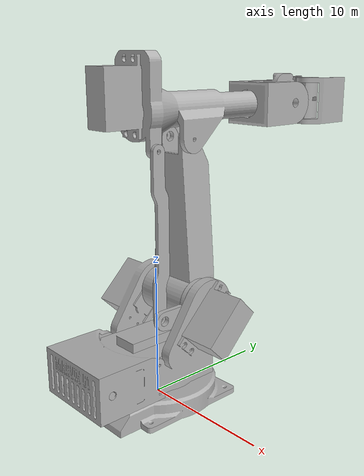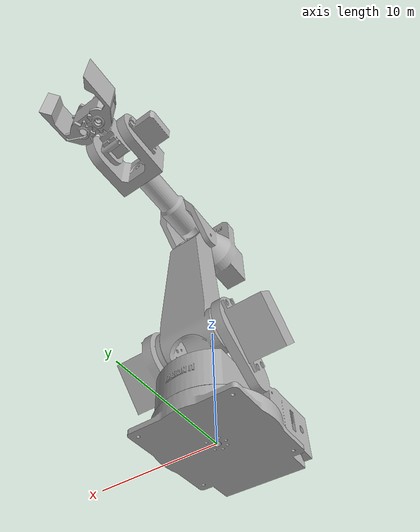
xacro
<?xml version="1.0" ?>
<robot name="Marvin01Scale" xmlns:xacro="http://www.ros.org/wiki/xacro">

<xacro:include filename="$(find Marvin01Scale_description)/urdf/materials.xacro" />
<xacro:include filename="$(find Marvin01Scale_description)/urdf/Marvin01Scale.trans" />
<xacro:include filename="$(find Marvin01Scale_description)/urdf/Marvin01Scale.gazebo" />
<link name="base_link">
  <inertial>
    <origin rpy="0 0 0" xyz="6.830711472621104e-12 -0.830253908134836 0.6566457993430691"/>
    <mass value="707741.9567336167"/>
    <inertia ixx="6120991.002864" ixy="-4e-06" ixz="-3e-06" iyy="4204055.115193" iyz="9528.53418" izz="10062871.213081"/>
  </inertial>
  <visual>
    <origin rpy="0 0 0" xyz="0 0 0"/>
    <geometry>
      <mesh filename="package://Marvin01Scale_description/meshes/base_link.stl" scale="0.001 0.001 0.001"/>
    </geometry>
    <material name="silver"/>
  </visual>
  <collision>
    <origin rpy="0 0 0" xyz="0 0 0"/>
    <geometry>
      <mesh filename="package://Marvin01Scale_description/meshes/base_link.stl" scale="0.001 0.001 0.001"/>
    </geometry>
  </collision>
</link>

<link name="joint1_1">
  <inertial>
    <origin rpy="0 0 0" xyz="0.0012779639306998826 0.14293309351939398 2.806210954915956"/>
    <mass value="1808337.358215421"/>
    <inertia ixx="18328326.445389" ixy="12566.831744" ixz="1948.014242" iyy="22523607.035097" iyz="-3140204.661801" izz="26223887.018984"/>
  </inertial>
  <visual>
    <origin rpy="0 0 0" xyz="-0.0 0.0 -1.5"/>
    <geometry>
      <mesh filename="package://Marvin01Scale_description/meshes/joint1_1.stl" scale="0.001 0.001 0.001"/>
    </geometry>
    <material name="silver"/>
  </visual>
  <collision>
    <origin rpy="0 0 0" xyz="-0.0 0.0 -1.5"/>
    <geometry>
      <mesh filename="package://Marvin01Scale_description/meshes/joint1_1.stl" scale="0.001 0.001 0.001"/>
    </geometry>
  </collision>
</link>

<link name="joint2_1">
  <inertial>
    <origin rpy="0 0 0" xyz="-0.14307960365103697 0.32803297031249423 4.394289977517414"/>
    <mass value="358523.4926737707"/>
    <inertia ixx="5635540.111641" ixy="-16827.241166" ixz="-225415.673882" iyy="5917446.750616" iyz="-178229.631481" izz="1031879.692544"/>
  </inertial>
  <visual>
    <origin rpy="0 0 0" xyz="-0.0 -2.269074 -7.403218"/>
    <geometry>
      <mesh filename="package://Marvin01Scale_description/meshes/joint2_1.stl" scale="0.001 0.001 0.001"/>
    </geometry>
    <material name="silver"/>
  </visual>
  <collision>
    <origin rpy="0 0 0" xyz="-0.0 -2.269074 -7.403218"/>
    <geometry>
      <mesh filename="package://Marvin01Scale_description/meshes/joint2_1.stl" scale="0.001 0.001 0.001"/>
    </geometry>
  </collision>
</link>

<link name="joint31_1">
  <inertial>
    <origin rpy="0 0 0" xyz="-0.41067949885467847 -0.8437545053724238 -0.020476563462739072"/>
    <mass value="34192.64476921537"/>
    <inertia ixx="106084.562025" ixy="-352.01572" ixz="-87.811" iyy="27626.852229" iyz="-11245.150467" izz="79370.458061"/>
  </inertial>
  <visual>
    <origin rpy="0 0 0" xyz="-2.65 -2.269074 -7.213218"/>
    <geometry>
      <mesh filename="package://Marvin01Scale_description/meshes/joint31_1.stl" scale="0.001 0.001 0.001"/>
    </geometry>
    <material name="silver"/>
  </visual>
  <collision>
    <origin rpy="0 0 0" xyz="-2.65 -2.269074 -7.213218"/>
    <geometry>
      <mesh filename="package://Marvin01Scale_description/meshes/joint31_1.stl" scale="0.001 0.001 0.001"/>
    </geometry>
  </collision>
</link>

<link name="joint3_1">
  <inertial>
    <origin rpy="0 0 0" xyz="0.010640147045936734 -1.9896429693934157 2.43711925519521"/>
    <mass value="625995.4881109771"/>
    <inertia ixx="9264358.723144" ixy="10047.920478" ixz="15711.547766" iyy="1767061.95412" iyz="1210418.844373" izz="8526826.756427"/>
  </inertial>
  <visual>
    <origin rpy="0 0 0" xyz="-0.0 -2.256734 -19.403211"/>
    <geometry>
      <mesh filename="package://Marvin01Scale_description/meshes/joint3_1.stl" scale="0.001 0.001 0.001"/>
    </geometry>
    <material name="silver"/>
  </visual>
  <collision>
    <origin rpy="0 0 0" xyz="-0.0 -2.256734 -19.403211"/>
    <geometry>
      <mesh filename="package://Marvin01Scale_description/meshes/joint3_1.stl" scale="0.001 0.001 0.001"/>
    </geometry>
  </collision>
</link>

<link name="joint4_1">
  <inertial>
    <origin rpy="0 0 0" xyz="-0.4612576627328692 2.1808693046909653 -0.006067561583183334"/>
    <mass value="285362.38048337575"/>
    <inertia ixx="797483.206219" ixy="105730.628594" ixz="372.823797" iyy="1147591.590044" iyz="-2149.830897" izz="1488857.60676"/>
  </inertial>
  <visual>
    <origin rpy="0 0 0" xyz="-0.0 -9.491734 -21.403211"/>
    <geometry>
      <mesh filename="package://Marvin01Scale_description/meshes/joint4_1.stl" scale="0.001 0.001 0.001"/>
    </geometry>
    <material name="silver"/>
  </visual>
  <collision>
    <origin rpy="0 0 0" xyz="-0.0 -9.491734 -21.403211"/>
    <geometry>
      <mesh filename="package://Marvin01Scale_description/meshes/joint4_1.stl" scale="0.001 0.001 0.001"/>
    </geometry>
  </collision>
</link>

<link name="joint5_1">
  <inertial>
    <origin rpy="0 0 0" xyz="0.19717016145279231 0.3114593208162084 0.5374753069182461"/>
    <mass value="83980.78687410816"/>
    <inertia ixx="103420.741685" ixy="8001.776367" ixz="39.107323" iyy="73930.127195" iyz="3244.056942" izz="65516.187376"/>
  </inertial>
  <visual>
    <origin rpy="0 0 0" xyz="-0.0 -12.991734 -21.403211"/>
    <geometry>
      <mesh filename="package://Marvin01Scale_description/meshes/joint5_1.stl" scale="0.001 0.001 0.001"/>
    </geometry>
    <material name="silver"/>
  </visual>
  <collision>
    <origin rpy="0 0 0" xyz="-0.0 -12.991734 -21.403211"/>
    <geometry>
      <mesh filename="package://Marvin01Scale_description/meshes/joint5_1.stl" scale="0.001 0.001 0.001"/>
    </geometry>
  </collision>
</link>

<link name="gripper1_1">
  <inertial>
    <origin rpy="0 0 0" xyz="-0.12012278961198618 0.8537598788093987 0.014435449695572089"/>
    <mass value="7014.261450939257"/>
    <inertia ixx="9123.093731" ixy="-11.59407" ixz="-445.328279" iyy="14425.460738" iyz="1.393261" izz="9895.246319"/>
  </inertial>
  <visual>
    <origin rpy="0 0 0" xyz="-0.0 -15.120067 -21.428211"/>
    <geometry>
      <mesh filename="package://Marvin01Scale_description/meshes/gripper1_1.stl" scale="0.001 0.001 0.001"/>
    </geometry>
    <material name="silver"/>
  </visual>
  <collision>
    <origin rpy="0 0 0" xyz="-0.0 -15.120067 -21.428211"/>
    <geometry>
      <mesh filename="package://Marvin01Scale_description/meshes/gripper1_1.stl" scale="0.001 0.001 0.001"/>
    </geometry>
  </collision>
</link>

<link name="gripper2_1">
  <inertial>
    <origin rpy="0 0 0" xyz="0.04851034720493841 1.533344165077482 -1.806704686285645"/>
    <mass value="5177.751815175873"/>
    <inertia ixx="16044.346934" ixy="1567.118959" ixz="-118.692095" iyy="10383.565059" iyz="359.149885" izz="8528.581734"/>
  </inertial>
  <visual>
    <origin rpy="0 0 0" xyz="-0.77 -15.960067 -23.278211"/>
    <geometry>
      <mesh filename="package://Marvin01Scale_description/meshes/gripper2_1.stl" scale="0.001 0.001 0.001"/>
    </geometry>
    <material name="silver"/>
  </visual>
  <collision>
    <origin rpy="0 0 0" xyz="-0.77 -15.960067 -23.278211"/>
    <geometry>
      <mesh filename="package://Marvin01Scale_description/meshes/gripper2_1.stl" scale="0.001 0.001 0.001"/>
    </geometry>
  </collision>
</link>

<link name="gripper3_1">
  <inertial>
    <origin rpy="0 0 0" xyz="-0.06595559703236398 1.4942544998994247 -1.4749997228921785"/>
    <mass value="5440.908080297406"/>
    <inertia ixx="16934.177187" ixy="-1600.874278" ixz="0.0" iyy="11112.355158" iyz="-0.0" izz="8778.854045"/>
  </inertial>
  <visual>
    <origin rpy="0 0 0" xyz="0.77 -15.960067 -22.878211"/>
    <geometry>
      <mesh filename="package://Marvin01Scale_description/meshes/gripper3_1.stl" scale="0.001 0.001 0.001"/>
    </geometry>
    <material name="silver"/>
  </visual>
  <collision>
    <origin rpy="0 0 0" xyz="0.77 -15.960067 -22.878211"/>
    <geometry>
      <mesh filename="package://Marvin01Scale_description/meshes/gripper3_1.stl" scale="0.001 0.001 0.001"/>
    </geometry>
  </collision>
</link>

<link name="joint32_1">
  <inertial>
    <origin rpy="0 0 0" xyz="-0.14999999999986113 0.15322143132440025 5.999999622050031"/>
    <mass value="30310.111546442153"/>
    <inertia ixx="405467.148004" ixy="-0.0" ixz="0.0" iyy="402367.608982" iyz="0.0" izz="3554.190695"/>
  </inertial>
  <visual>
    <origin rpy="0 0 0" xyz="-2.027119 1.230926 -6.903218"/>
    <geometry>
      <mesh filename="package://Marvin01Scale_description/meshes/joint32_1.stl" scale="0.001 0.001 0.001"/>
    </geometry>
    <material name="silver"/>
  </visual>
  <collision>
    <origin rpy="0 0 0" xyz="-2.027119 1.230926 -6.903218"/>
    <geometry>
      <mesh filename="package://Marvin01Scale_description/meshes/joint32_1.stl" scale="0.001 0.001 0.001"/>
    </geometry>
  </collision>
</link>

<joint name="Rev64" type="continuous">
  <origin rpy="0 0 0" xyz="0.0 0.0 1.5"/>
  <parent link="base_link"/>
  <child link="joint1_1"/>
  <axis xyz="-0.0 0.0 -1.0"/>
</joint>

<joint name="Rev65" type="continuous">
  <origin rpy="0 0 0" xyz="0.0 2.269074 5.903218"/>
  <parent link="joint1_1"/>
  <child link="joint2_1"/>
  <axis xyz="-1.0 -0.0 0.0"/>
</joint>

<joint name="Rev66" type="continuous">
  <origin rpy="0 0 0" xyz="2.65 2.269074 5.713218"/>
  <parent link="joint1_1"/>
  <child link="joint31_1"/>
  <axis xyz="-1.0 0.0 -0.0"/>
</joint>

<joint name="Rev67" type="continuous">
  <origin rpy="0 0 0" xyz="0.0 -0.01234 11.999993"/>
  <parent link="joint2_1"/>
  <child link="joint3_1"/>
  <axis xyz="-1.0 0.0 0.0"/>
</joint>

<joint name="Rev68" type="continuous">
  <origin rpy="0 0 0" xyz="0.0 7.235 2.0"/>
  <parent link="joint3_1"/>
  <child link="joint4_1"/>
  <axis xyz="0.0 1.0 0.0"/>
</joint>

<joint name="Rev69" type="continuous">
  <origin rpy="0 0 0" xyz="0.0 3.5 0.0"/>
  <parent link="joint4_1"/>
  <child link="joint5_1"/>
  <axis xyz="1.0 0.0 -0.0"/>
</joint>

<joint name="Rev70" type="continuous">
  <origin rpy="0 0 0" xyz="0.0 2.128333 0.025"/>
  <parent link="joint5_1"/>
  <child link="gripper1_1"/>
  <axis xyz="-0.0 1.0 0.0"/>
</joint>

<joint name="Rev72" type="continuous">
  <origin rpy="0 0 0" xyz="0.77 0.84 1.85"/>
  <parent link="gripper1_1"/>
  <child link="gripper2_1"/>
  <axis xyz="-0.0 0.0 1.0"/>
</joint>

<joint name="Rev73" type="continuous">
  <origin rpy="0 0 0" xyz="-0.77 0.84 1.45"/>
  <parent link="gripper1_1"/>
  <child link="gripper3_1"/>
  <axis xyz="0.0 0.0 -1.0"/>
</joint>

<joint name="Rev76" type="continuous">
  <origin rpy="0 0 0" xyz="-0.622881 -3.5 -0.31"/>
  <parent link="joint31_1"/>
  <child link="joint32_1"/>
  <axis xyz="-1.0 0.0 -0.0"/>
</joint>

</robot>

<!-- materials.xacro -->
<robot name="Marvin01Scale" xmlns:xacro="http://www.ros.org/wiki/xacro" >

<material name="silver">
  <color rgba="0.700 0.700 0.700 1.000"/>
</material>

</robot>

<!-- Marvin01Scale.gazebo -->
<robot name="Marvin01Scale" xmlns:xacro="http://www.ros.org/wiki/xacro" >

<xacro:property name="body_color" value="Gazebo/Silver" />

<gazebo>
  <plugin filename="libgazebo_ros_control.so" name="control"/>
</gazebo>
<gazebo reference="base_link">
  <material>${body_color}</material>
  <mu1>0.2</mu1>
  <mu2>0.2</mu2>
  <selfCollide>true</selfCollide>
  <gravity>true</gravity>
</gazebo>

<gazebo reference="joint1_1">
  <material>${body_color}</material>
  <mu1>0.2</mu1>
  <mu2>0.2</mu2>
  <selfCollide>true</selfCollide>
</gazebo>

<gazebo reference="joint2_1">
  <material>${body_color}</material>
  <mu1>0.2</mu1>
  <mu2>0.2</mu2>
  <selfCollide>true</selfCollide>
</gazebo>

<gazebo reference="joint31_1">
  <material>${body_color}</material>
  <mu1>0.2</mu1>
  <mu2>0.2</mu2>
  <selfCollide>true</selfCollide>
</gazebo>

<gazebo reference="joint3_1">
  <material>${body_color}</material>
  <mu1>0.2</mu1>
  <mu2>0.2</mu2>
  <selfCollide>true</selfCollide>
</gazebo>

<gazebo reference="joint4_1">
  <material>${body_color}</material>
  <mu1>0.2</mu1>
  <mu2>0.2</mu2>
  <selfCollide>true</selfCollide>
</gazebo>

<gazebo reference="joint5_1">
  <material>${body_color}</material>
  <mu1>0.2</mu1>
  <mu2>0.2</mu2>
  <selfCollide>true</selfCollide>
</gazebo>

<gazebo reference="gripper1_1">
  <material>${body_color}</material>
  <mu1>0.2</mu1>
  <mu2>0.2</mu2>
  <selfCollide>true</selfCollide>
</gazebo>

<gazebo reference="gripper2_1">
  <material>${body_color}</material>
  <mu1>0.2</mu1>
  <mu2>0.2</mu2>
  <selfCollide>true</selfCollide>
</gazebo>

<gazebo reference="gripper3_1">
  <material>${body_color}</material>
  <mu1>0.2</mu1>
  <mu2>0.2</mu2>
  <selfCollide>true</selfCollide>
</gazebo>

<gazebo reference="joint32_1">
  <material>${body_color}</material>
  <mu1>0.2</mu1>
  <mu2>0.2</mu2>
  <selfCollide>true</selfCollide>
</gazebo>

</robot>
